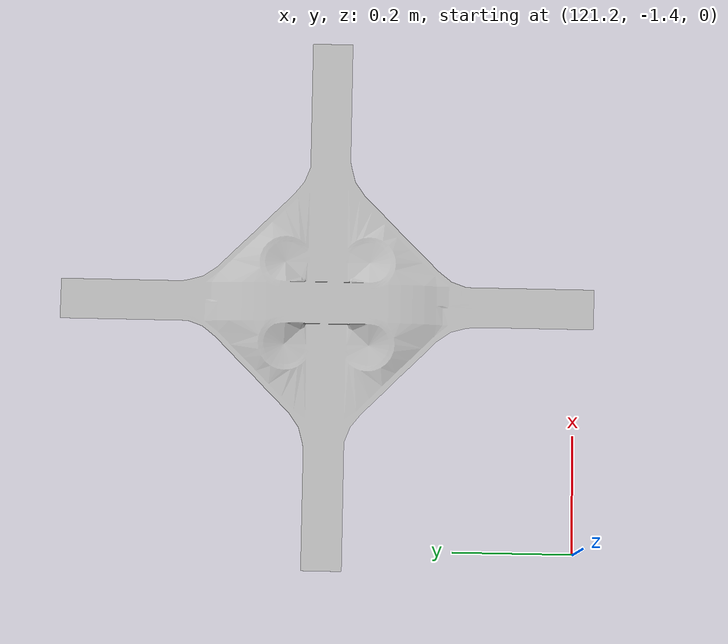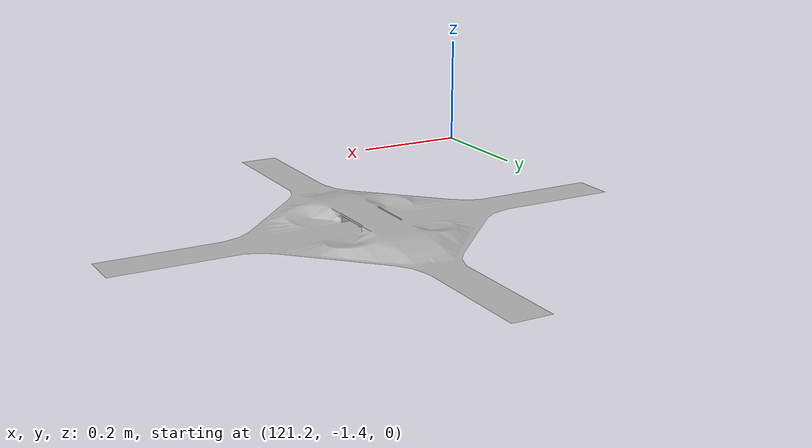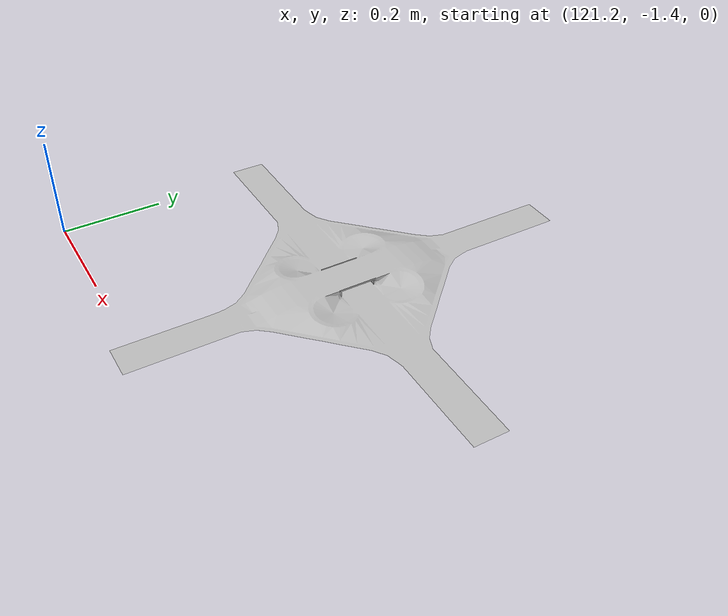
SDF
<sdf version="1.6">
 <world name="default">
  <model name="cloverleaf_interchange">
   <static>1</static>
   <link name="link">
    <collision name="collision">
     <geometry>
      <mesh>
       <uri>model://cloverleaf_interchange/meshes/cloverleaf.obj</uri>
       <scale>0.0254 0.0254 0.0254</scale>
      </mesh>
     </geometry>
    </collision>
    <visual name="visual">
     <geometry>
      <mesh>
       <uri>model://cloverleaf_interchange/meshes/cloverleaf.obj</uri>
       <scale>0.0254 0.0254 0.0254</scale>
      </mesh>
     </geometry>
    </visual>
   </link>
   <pose>121.637 -0.690578 0 0 -0 0</pose>
  </model>
 </world>
</sdf>
